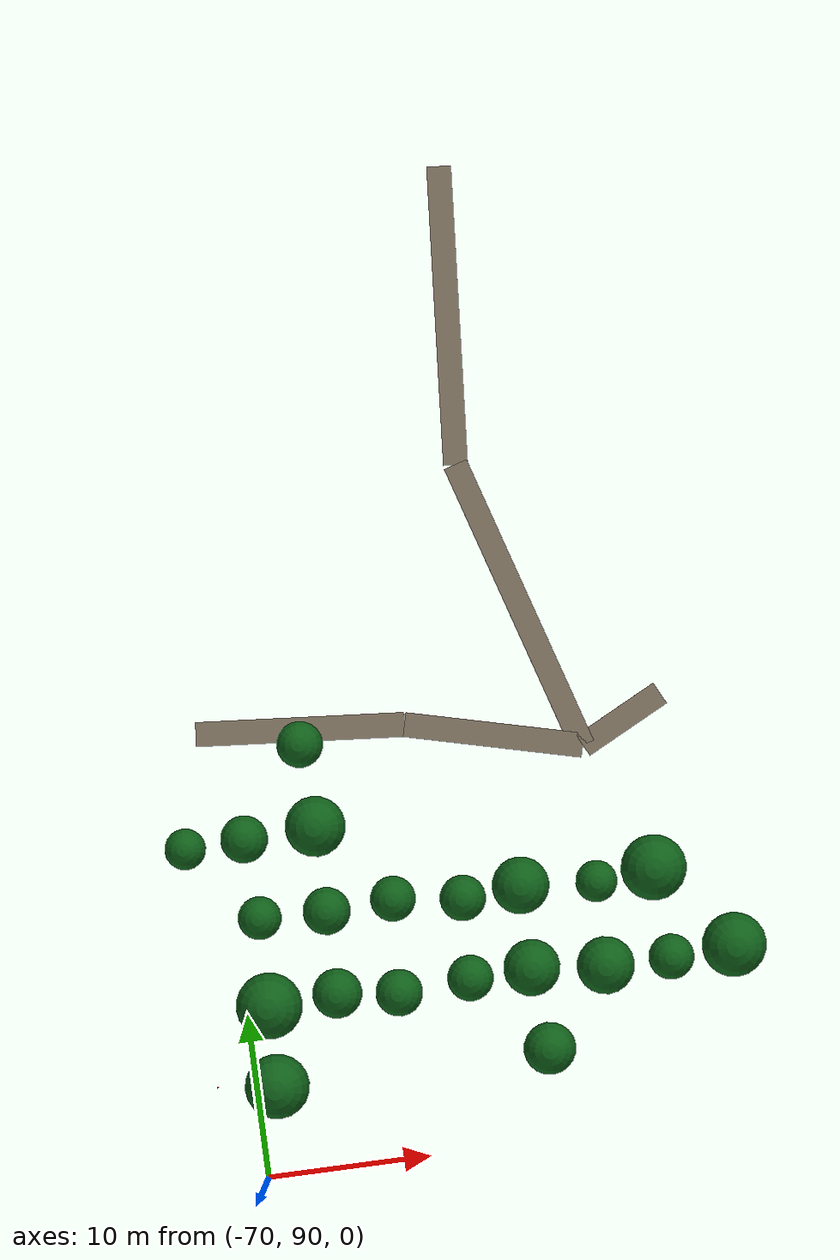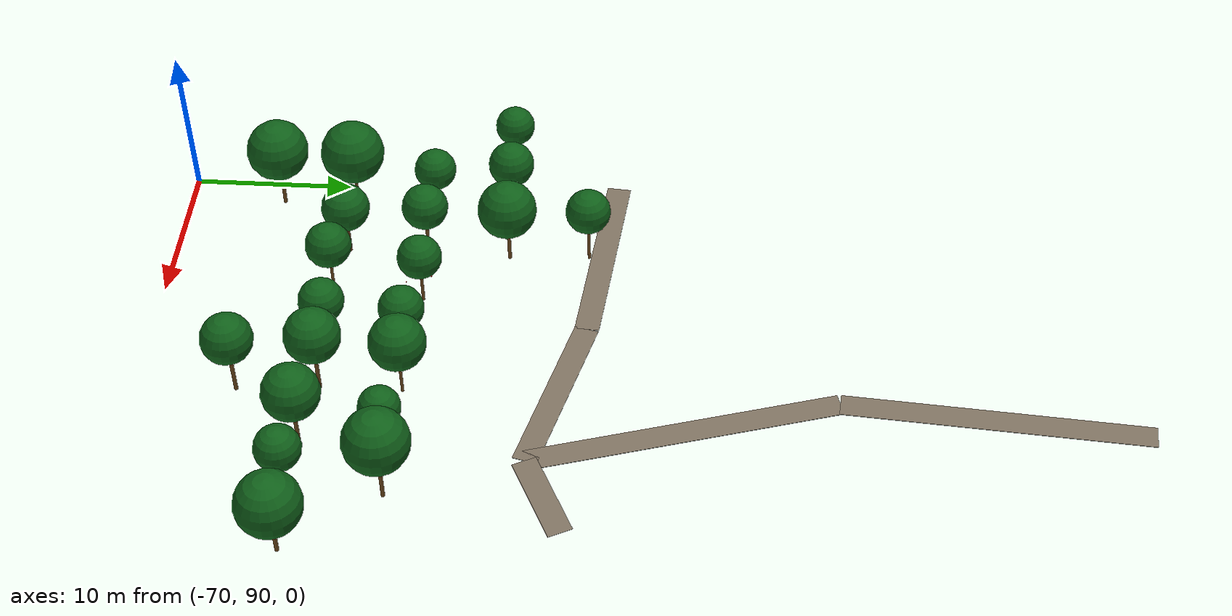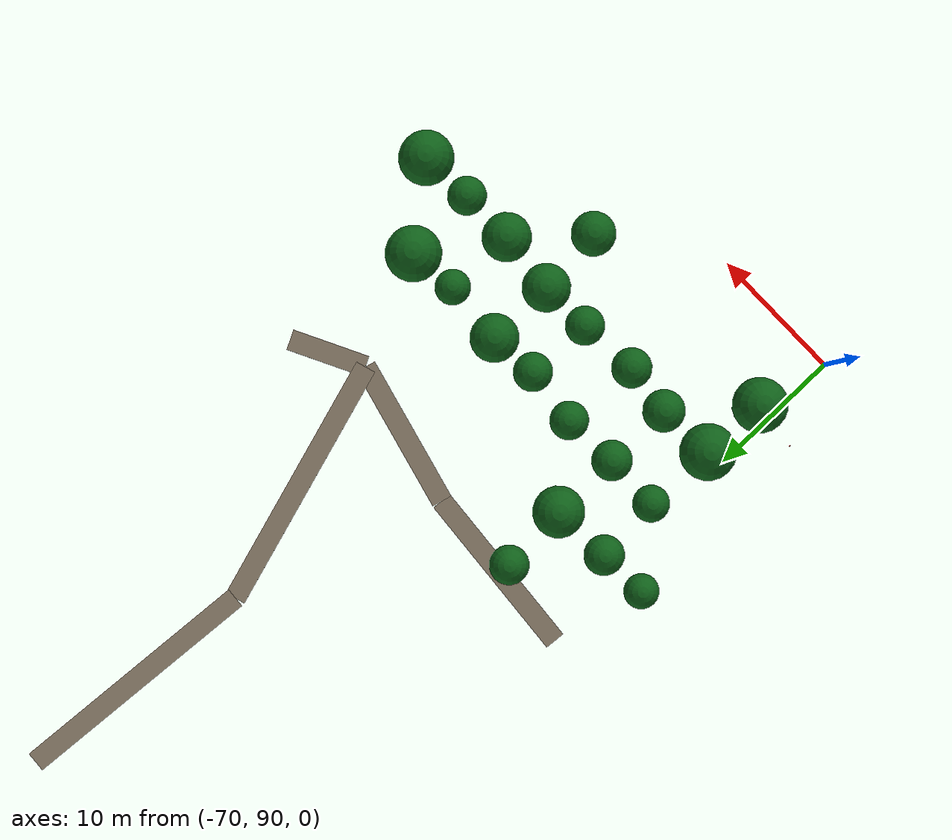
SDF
<sdf version="1.9">
 <world name="cheongsong_orchard">
  <model name="road_28">
   <static>true</static>
   <pose>-52.2 140.9 0.02 0 0 -1.6477</pose>
   <link name="link">
    <collision name="collision">
     <geometry><box><size>18.4 1.5 0.04</size></box></geometry>
     <surface><friction><ode><mu>0.9</mu><mu2>0.9</mu2></ode></friction></surface>
    </collision>
    <visual name="visual">
     <geometry><box><size>18.4 1.5 0.04</size></box></geometry>
     <material><ambient>0.4 0.35 0.28 1</ambient><diffuse>0.5 0.45 0.38 1</diffuse></material>
    </visual>
   </link>
  </model>
  <model name="road_29">
   <static>true</static>
   <pose>-50.2 122.7 0.02 0 0 -1.2793</pose>
   <link name="link">
    <collision name="collision">
     <geometry><box><size>18.9 1.5 0.04</size></box></geometry>
     <surface><friction><ode><mu>0.9</mu><mu2>0.9</mu2></ode></friction></surface>
    </collision>
    <visual name="visual">
     <geometry><box><size>18.9 1.5 0.04</size></box></geometry>
     <material><ambient>0.4 0.35 0.28 1</ambient><diffuse>0.5 0.45 0.38 1</diffuse></material>
    </visual>
   </link>
  </model>
  <model name="road_60">
   <static>true</static>
   <pose>-44.9 114.9 0.02 0 0 -2.6750</pose>
   <link name="link">
    <collision name="collision">
     <geometry><box><size>5.7 1.5 0.04</size></box></geometry>
     <surface><friction><ode><mu>0.9</mu><mu2>0.9</mu2></ode></friction></surface>
    </collision>
    <visual name="visual">
     <geometry><box><size>5.7 1.5 0.04</size></box></geometry>
     <material><ambient>0.4 0.35 0.28 1</ambient><diffuse>0.5 0.45 0.38 1</diffuse></material>
    </visual>
   </link>
  </model>
  <model name="road_61">
   <static>true</static>
   <pose>-52.8 115.0 0.02 0 0 2.8934</pose>
   <link name="link">
    <collision name="collision">
     <geometry><box><size>11.0 1.5 0.04</size></box></geometry>
     <surface><friction><ode><mu>0.9</mu><mu2>0.9</mu2></ode></friction></surface>
    </collision>
    <visual name="visual">
     <geometry><box><size>11.0 1.5 0.04</size></box></geometry>
     <material><ambient>0.4 0.35 0.28 1</ambient><diffuse>0.5 0.45 0.38 1</diffuse></material>
    </visual>
   </link>
  </model>
  <model name="road_62">
   <static>true</static>
   <pose>-64.5 116.9 0.02 0 0 3.0570</pose>
   <link name="link">
    <collision name="collision">
     <geometry><box><size>12.8 1.5 0.04</size></box></geometry>
     <surface><friction><ode><mu>0.9</mu><mu2>0.9</mu2></ode></friction></surface>
    </collision>
    <visual name="visual">
     <geometry><box><size>12.8 1.5 0.04</size></box></geometry>
     <material><ambient>0.4 0.35 0.28 1</ambient><diffuse>0.5 0.45 0.38 1</diffuse></material>
    </visual>
   </link>
  </model>
  <model name="apple_tree_2191">
   <static>true</static>
   <pose>-68.39 96.00 0 0 0 0</pose>
   <link name="link">
    <collision name="trunk_col">
     <pose>0 0 1.24 0 0 0</pose>
     <geometry><cylinder><radius>0.114</radius><length>2.47</length></cylinder></geometry>
    </collision>
    <visual name="trunk_vis">
     <pose>0 0 1.24 0 0 0</pose>
     <geometry><cylinder><radius>0.114</radius><length>2.47</length></cylinder></geometry>
     <material><ambient>0.35 0.22 0.08 1</ambient><diffuse>0.45 0.30 0.12 1</diffuse></material>
    </visual>
    <collision name="canopy_col">
     <pose>0 0 4.41 0 0 0</pose>
     <geometry><sphere><radius>1.94</radius></sphere></geometry>
    </collision>
    <visual name="canopy_vis">
     <pose>0 0 4.41 0 0 0</pose>
     <geometry><sphere><radius>1.94</radius></sphere></geometry>
     <material><ambient>0.04 0.28 0.06 1</ambient><diffuse>0.06 0.38 0.10 1</diffuse></material>
    </visual>
   </link>
  </model>
  <model name="apple_tree_2195">
   <static>true</static>
   <pose>-51.99 96.07 0 0 0 0</pose>
   <link name="link">
    <collision name="trunk_col">
     <pose>0 0 1.36 0 0 0</pose>
     <geometry><cylinder><radius>0.119</radius><length>2.71</length></cylinder></geometry>
    </collision>
    <visual name="trunk_vis">
     <pose>0 0 1.36 0 0 0</pose>
     <geometry><cylinder><radius>0.119</radius><length>2.71</length></cylinder></geometry>
     <material><ambient>0.35 0.22 0.08 1</ambient><diffuse>0.45 0.30 0.12 1</diffuse></material>
    </visual>
    <collision name="canopy_col">
     <pose>0 0 4.28 0 0 0</pose>
     <geometry><sphere><radius>1.57</radius></sphere></geometry>
    </collision>
    <visual name="canopy_vis">
     <pose>0 0 4.28 0 0 0</pose>
     <geometry><sphere><radius>1.57</radius></sphere></geometry>
     <material><ambient>0.04 0.28 0.06 1</ambient><diffuse>0.06 0.38 0.10 1</diffuse></material>
    </visual>
   </link>
  </model>
  <model name="apple_tree_2232">
   <static>true</static>
   <pose>-68.21 100.83 0 0 0 0</pose>
   <link name="link">
    <collision name="trunk_col">
     <pose>0 0 1.34 0 0 0</pose>
     <geometry><cylinder><radius>0.087</radius><length>2.67</length></cylinder></geometry>
    </collision>
    <visual name="trunk_vis">
     <pose>0 0 1.34 0 0 0</pose>
     <geometry><cylinder><radius>0.087</radius><length>2.67</length></cylinder></geometry>
     <material><ambient>0.35 0.22 0.08 1</ambient><diffuse>0.45 0.30 0.12 1</diffuse></material>
    </visual>
    <collision name="canopy_col">
     <pose>0 0 4.66 0 0 0</pose>
     <geometry><sphere><radius>1.99</radius></sphere></geometry>
    </collision>
    <visual name="canopy_vis">
     <pose>0 0 4.66 0 0 0</pose>
     <geometry><sphere><radius>1.99</radius></sphere></geometry>
     <material><ambient>0.04 0.28 0.06 1</ambient><diffuse>0.06 0.38 0.10 1</diffuse></material>
    </visual>
   </link>
  </model>
  <model name="apple_tree_2233">
   <static>true</static>
   <pose>-64.16 100.94 0 0 0 0</pose>
   <link name="link">
    <collision name="trunk_col">
     <pose>0 0 1.08 0 0 0</pose>
     <geometry><cylinder><radius>0.095</radius><length>2.17</length></cylinder></geometry>
    </collision>
    <visual name="trunk_vis">
     <pose>0 0 1.08 0 0 0</pose>
     <geometry><cylinder><radius>0.095</radius><length>2.17</length></cylinder></geometry>
     <material><ambient>0.35 0.22 0.08 1</ambient><diffuse>0.45 0.30 0.12 1</diffuse></material>
    </visual>
    <collision name="canopy_col">
     <pose>0 0 3.66 0 0 0</pose>
     <geometry><sphere><radius>1.50</radius></sphere></geometry>
    </collision>
    <visual name="canopy_vis">
     <pose>0 0 3.66 0 0 0</pose>
     <geometry><sphere><radius>1.50</radius></sphere></geometry>
     <material><ambient>0.04 0.28 0.06 1</ambient><diffuse>0.06 0.38 0.10 1</diffuse></material>
    </visual>
   </link>
  </model>
  <model name="apple_tree_2234">
   <static>true</static>
   <pose>-60.47 100.52 0 0 0 0</pose>
   <link name="link">
    <collision name="trunk_col">
     <pose>0 0 1.26 0 0 0</pose>
     <geometry><cylinder><radius>0.088</radius><length>2.52</length></cylinder></geometry>
    </collision>
    <visual name="trunk_vis">
     <pose>0 0 1.26 0 0 0</pose>
     <geometry><cylinder><radius>0.088</radius><length>2.52</length></cylinder></geometry>
     <material><ambient>0.35 0.22 0.08 1</ambient><diffuse>0.45 0.30 0.12 1</diffuse></material>
    </visual>
    <collision name="canopy_col">
     <pose>0 0 3.95 0 0 0</pose>
     <geometry><sphere><radius>1.42</radius></sphere></geometry>
    </collision>
    <visual name="canopy_vis">
     <pose>0 0 3.95 0 0 0</pose>
     <geometry><sphere><radius>1.42</radius></sphere></geometry>
     <material><ambient>0.04 0.28 0.06 1</ambient><diffuse>0.06 0.38 0.10 1</diffuse></material>
    </visual>
   </link>
  </model>
  <model name="apple_tree_2235">
   <static>true</static>
   <pose>-56.14 100.78 0 0 0 0</pose>
   <link name="link">
    <collision name="trunk_col">
     <pose>0 0 1.08 0 0 0</pose>
     <geometry><cylinder><radius>0.104</radius><length>2.15</length></cylinder></geometry>
    </collision>
    <visual name="trunk_vis">
     <pose>0 0 1.08 0 0 0</pose>
     <geometry><cylinder><radius>0.104</radius><length>2.15</length></cylinder></geometry>
     <material><ambient>0.35 0.22 0.08 1</ambient><diffuse>0.45 0.30 0.12 1</diffuse></material>
    </visual>
    <collision name="canopy_col">
     <pose>0 0 3.54 0 0 0</pose>
     <geometry><sphere><radius>1.39</radius></sphere></geometry>
    </collision>
    <visual name="canopy_vis">
     <pose>0 0 3.54 0 0 0</pose>
     <geometry><sphere><radius>1.39</radius></sphere></geometry>
     <material><ambient>0.04 0.28 0.06 1</ambient><diffuse>0.06 0.38 0.10 1</diffuse></material>
    </visual>
   </link>
  </model>
  <model name="apple_tree_2236">
   <static>true</static>
   <pose>-52.42 100.99 0 0 0 0</pose>
   <link name="link">
    <collision name="trunk_col">
     <pose>0 0 1.36 0 0 0</pose>
     <geometry><cylinder><radius>0.118</radius><length>2.72</length></cylinder></geometry>
    </collision>
    <visual name="trunk_vis">
     <pose>0 0 1.36 0 0 0</pose>
     <geometry><cylinder><radius>0.118</radius><length>2.72</length></cylinder></geometry>
     <material><ambient>0.35 0.22 0.08 1</ambient><diffuse>0.45 0.30 0.12 1</diffuse></material>
    </visual>
    <collision name="canopy_col">
     <pose>0 0 4.42 0 0 0</pose>
     <geometry><sphere><radius>1.70</radius></sphere></geometry>
    </collision>
    <visual name="canopy_vis">
     <pose>0 0 4.42 0 0 0</pose>
     <geometry><sphere><radius>1.70</radius></sphere></geometry>
     <material><ambient>0.04 0.28 0.06 1</ambient><diffuse>0.06 0.38 0.10 1</diffuse></material>
    </visual>
   </link>
  </model>
  <model name="apple_tree_2237">
   <static>true</static>
   <pose>-48.03 100.54 0 0 0 0</pose>
   <link name="link">
    <collision name="trunk_col">
     <pose>0 0 1.31 0 0 0</pose>
     <geometry><cylinder><radius>0.118</radius><length>2.62</length></cylinder></geometry>
    </collision>
    <visual name="trunk_vis">
     <pose>0 0 1.31 0 0 0</pose>
     <geometry><cylinder><radius>0.118</radius><length>2.62</length></cylinder></geometry>
     <material><ambient>0.35 0.22 0.08 1</ambient><diffuse>0.45 0.30 0.12 1</diffuse></material>
    </visual>
    <collision name="canopy_col">
     <pose>0 0 4.35 0 0 0</pose>
     <geometry><sphere><radius>1.73</radius></sphere></geometry>
    </collision>
    <visual name="canopy_vis">
     <pose>0 0 4.35 0 0 0</pose>
     <geometry><sphere><radius>1.73</radius></sphere></geometry>
     <material><ambient>0.04 0.28 0.06 1</ambient><diffuse>0.06 0.38 0.10 1</diffuse></material>
    </visual>
   </link>
  </model>
  <model name="apple_tree_2238">
   <static>true</static>
   <pose>-44.07 100.51 0 0 0 0</pose>
   <link name="link">
    <collision name="trunk_col">
     <pose>0 0 1.39 0 0 0</pose>
     <geometry><cylinder><radius>0.137</radius><length>2.77</length></cylinder></geometry>
    </collision>
    <visual name="trunk_vis">
     <pose>0 0 1.39 0 0 0</pose>
     <geometry><cylinder><radius>0.137</radius><length>2.77</length></cylinder></geometry>
     <material><ambient>0.35 0.22 0.08 1</ambient><diffuse>0.45 0.30 0.12 1</diffuse></material>
    </visual>
    <collision name="canopy_col">
     <pose>0 0 4.14 0 0 0</pose>
     <geometry><sphere><radius>1.37</radius></sphere></geometry>
    </collision>
    <visual name="canopy_vis">
     <pose>0 0 4.14 0 0 0</pose>
     <geometry><sphere><radius>1.37</radius></sphere></geometry>
     <material><ambient>0.04 0.28 0.06 1</ambient><diffuse>0.06 0.38 0.10 1</diffuse></material>
    </visual>
   </link>
  </model>
  <model name="apple_tree_2239">
   <static>true</static>
   <pose>-40.24 100.71 0 0 0 0</pose>
   <link name="link">
    <collision name="trunk_col">
     <pose>0 0 1.02 0 0 0</pose>
     <geometry><cylinder><radius>0.121</radius><length>2.04</length></cylinder></geometry>
    </collision>
    <visual name="trunk_vis">
     <pose>0 0 1.02 0 0 0</pose>
     <geometry><cylinder><radius>0.121</radius><length>2.04</length></cylinder></geometry>
     <material><ambient>0.35 0.22 0.08 1</ambient><diffuse>0.45 0.30 0.12 1</diffuse></material>
    </visual>
    <collision name="canopy_col">
     <pose>0 0 3.98 0 0 0</pose>
     <geometry><sphere><radius>1.94</radius></sphere></geometry>
    </collision>
    <visual name="canopy_vis">
     <pose>0 0 3.98 0 0 0</pose>
     <geometry><sphere><radius>1.94</radius></sphere></geometry>
     <material><ambient>0.04 0.28 0.06 1</ambient><diffuse>0.06 0.38 0.10 1</diffuse></material>
    </visual>
   </link>
  </model>
  <model name="apple_tree_2278">
   <static>true</static>
   <pose>-68.18 106.01 0 0 0 0</pose>
   <link name="link">
    <collision name="trunk_col">
     <pose>0 0 1.11 0 0 0</pose>
     <geometry><cylinder><radius>0.131</radius><length>2.22</length></cylinder></geometry>
    </collision>
    <visual name="trunk_vis">
     <pose>0 0 1.11 0 0 0</pose>
     <geometry><cylinder><radius>0.131</radius><length>2.22</length></cylinder></geometry>
     <material><ambient>0.35 0.22 0.08 1</ambient><diffuse>0.45 0.30 0.12 1</diffuse></material>
    </visual>
    <collision name="canopy_col">
     <pose>0 0 3.53 0 0 0</pose>
     <geometry><sphere><radius>1.31</radius></sphere></geometry>
    </collision>
    <visual name="canopy_vis">
     <pose>0 0 3.53 0 0 0</pose>
     <geometry><sphere><radius>1.31</radius></sphere></geometry>
     <material><ambient>0.04 0.28 0.06 1</ambient><diffuse>0.06 0.38 0.10 1</diffuse></material>
    </visual>
   </link>
  </model>
  <model name="apple_tree_2279">
   <static>true</static>
   <pose>-64.12 105.93 0 0 0 0</pose>
   <link name="link">
    <collision name="trunk_col">
     <pose>0 0 1.30 0 0 0</pose>
     <geometry><cylinder><radius>0.104</radius><length>2.61</length></cylinder></geometry>
    </collision>
    <visual name="trunk_vis">
     <pose>0 0 1.30 0 0 0</pose>
     <geometry><cylinder><radius>0.104</radius><length>2.61</length></cylinder></geometry>
     <material><ambient>0.35 0.22 0.08 1</ambient><diffuse>0.45 0.30 0.12 1</diffuse></material>
    </visual>
    <collision name="canopy_col">
     <pose>0 0 4.04 0 0 0</pose>
     <geometry><sphere><radius>1.43</radius></sphere></geometry>
    </collision>
    <visual name="canopy_vis">
     <pose>0 0 4.04 0 0 0</pose>
     <geometry><sphere><radius>1.43</radius></sphere></geometry>
     <material><ambient>0.04 0.28 0.06 1</ambient><diffuse>0.06 0.38 0.10 1</diffuse></material>
    </visual>
   </link>
  </model>
  <model name="apple_tree_2280">
   <static>true</static>
   <pose>-60.11 106.11 0 0 0 0</pose>
   <link name="link">
    <collision name="trunk_col">
     <pose>0 0 1.12 0 0 0</pose>
     <geometry><cylinder><radius>0.094</radius><length>2.23</length></cylinder></geometry>
    </collision>
    <visual name="trunk_vis">
     <pose>0 0 1.12 0 0 0</pose>
     <geometry><cylinder><radius>0.094</radius><length>2.23</length></cylinder></geometry>
     <material><ambient>0.35 0.22 0.08 1</ambient><diffuse>0.45 0.30 0.12 1</diffuse></material>
    </visual>
    <collision name="canopy_col">
     <pose>0 0 3.61 0 0 0</pose>
     <geometry><sphere><radius>1.37</radius></sphere></geometry>
    </collision>
    <visual name="canopy_vis">
     <pose>0 0 3.61 0 0 0</pose>
     <geometry><sphere><radius>1.37</radius></sphere></geometry>
     <material><ambient>0.04 0.28 0.06 1</ambient><diffuse>0.06 0.38 0.10 1</diffuse></material>
    </visual>
   </link>
  </model>
  <model name="apple_tree_2281">
   <static>true</static>
   <pose>-55.96 105.58 0 0 0 0</pose>
   <link name="link">
    <collision name="trunk_col">
     <pose>0 0 1.00 0 0 0</pose>
     <geometry><cylinder><radius>0.148</radius><length>2.00</length></cylinder></geometry>
    </collision>
    <visual name="trunk_vis">
     <pose>0 0 1.00 0 0 0</pose>
     <geometry><cylinder><radius>0.148</radius><length>2.00</length></cylinder></geometry>
     <material><ambient>0.35 0.22 0.08 1</ambient><diffuse>0.45 0.30 0.12 1</diffuse></material>
    </visual>
    <collision name="canopy_col">
     <pose>0 0 3.39 0 0 0</pose>
     <geometry><sphere><radius>1.39</radius></sphere></geometry>
    </collision>
    <visual name="canopy_vis">
     <pose>0 0 3.39 0 0 0</pose>
     <geometry><sphere><radius>1.39</radius></sphere></geometry>
     <material><ambient>0.04 0.28 0.06 1</ambient><diffuse>0.06 0.38 0.10 1</diffuse></material>
    </visual>
   </link>
  </model>
  <model name="apple_tree_2282">
   <static>true</static>
   <pose>-52.43 105.92 0 0 0 0</pose>
   <link name="link">
    <collision name="trunk_col">
     <pose>0 0 1.22 0 0 0</pose>
     <geometry><cylinder><radius>0.089</radius><length>2.43</length></cylinder></geometry>
    </collision>
    <visual name="trunk_vis">
     <pose>0 0 1.22 0 0 0</pose>
     <geometry><cylinder><radius>0.089</radius><length>2.43</length></cylinder></geometry>
     <material><ambient>0.35 0.22 0.08 1</ambient><diffuse>0.45 0.30 0.12 1</diffuse></material>
    </visual>
    <collision name="canopy_col">
     <pose>0 0 4.15 0 0 0</pose>
     <geometry><sphere><radius>1.72</radius></sphere></geometry>
    </collision>
    <visual name="canopy_vis">
     <pose>0 0 4.15 0 0 0</pose>
     <geometry><sphere><radius>1.72</radius></sphere></geometry>
     <material><ambient>0.04 0.28 0.06 1</ambient><diffuse>0.06 0.38 0.10 1</diffuse></material>
    </visual>
   </link>
  </model>
  <model name="apple_tree_2283">
   <static>true</static>
   <pose>-47.89 105.53 0 0 0 0</pose>
   <link name="link">
    <collision name="trunk_col">
     <pose>0 0 1.17 0 0 0</pose>
     <geometry><cylinder><radius>0.082</radius><length>2.35</length></cylinder></geometry>
    </collision>
    <visual name="trunk_vis">
     <pose>0 0 1.17 0 0 0</pose>
     <geometry><cylinder><radius>0.082</radius><length>2.35</length></cylinder></geometry>
     <material><ambient>0.35 0.22 0.08 1</ambient><diffuse>0.45 0.30 0.12 1</diffuse></material>
    </visual>
    <collision name="canopy_col">
     <pose>0 0 3.61 0 0 0</pose>
     <geometry><sphere><radius>1.26</radius></sphere></geometry>
    </collision>
    <visual name="canopy_vis">
     <pose>0 0 3.61 0 0 0</pose>
     <geometry><sphere><radius>1.26</radius></sphere></geometry>
     <material><ambient>0.04 0.28 0.06 1</ambient><diffuse>0.06 0.38 0.10 1</diffuse></material>
    </visual>
   </link>
  </model>
  <model name="apple_tree_2284">
   <static>true</static>
   <pose>-44.44 105.96 0 0 0 0</pose>
   <link name="link">
    <collision name="trunk_col">
     <pose>0 0 1.35 0 0 0</pose>
     <geometry><cylinder><radius>0.115</radius><length>2.69</length></cylinder></geometry>
    </collision>
    <visual name="trunk_vis">
     <pose>0 0 1.35 0 0 0</pose>
     <geometry><cylinder><radius>0.115</radius><length>2.69</length></cylinder></geometry>
     <material><ambient>0.35 0.22 0.08 1</ambient><diffuse>0.45 0.30 0.12 1</diffuse></material>
    </visual>
    <collision name="canopy_col">
     <pose>0 0 4.66 0 0 0</pose>
     <geometry><sphere><radius>1.97</radius></sphere></geometry>
    </collision>
    <visual name="canopy_vis">
     <pose>0 0 4.66 0 0 0</pose>
     <geometry><sphere><radius>1.97</radius></sphere></geometry>
     <material><ambient>0.04 0.28 0.06 1</ambient><diffuse>0.06 0.38 0.10 1</diffuse></material>
    </visual>
   </link>
  </model>
  <model name="apple_tree_2326">
   <static>true</static>
   <pose>-72.00 110.71 0 0 0 0</pose>
   <link name="link">
    <collision name="trunk_col">
     <pose>0 0 1.45 0 0 0</pose>
     <geometry><cylinder><radius>0.140</radius><length>2.90</length></cylinder></geometry>
    </collision>
    <visual name="trunk_vis">
     <pose>0 0 1.45 0 0 0</pose>
     <geometry><cylinder><radius>0.140</radius><length>2.90</length></cylinder></geometry>
     <material><ambient>0.35 0.22 0.08 1</ambient><diffuse>0.45 0.30 0.12 1</diffuse></material>
    </visual>
    <collision name="canopy_col">
     <pose>0 0 4.13 0 0 0</pose>
     <geometry><sphere><radius>1.24</radius></sphere></geometry>
    </collision>
    <visual name="canopy_vis">
     <pose>0 0 4.13 0 0 0</pose>
     <geometry><sphere><radius>1.24</radius></sphere></geometry>
     <material><ambient>0.04 0.28 0.06 1</ambient><diffuse>0.06 0.38 0.10 1</diffuse></material>
    </visual>
   </link>
  </model>
  <model name="apple_tree_2327">
   <static>true</static>
   <pose>-68.45 110.83 0 0 0 0</pose>
   <link name="link">
    <collision name="trunk_col">
     <pose>0 0 1.27 0 0 0</pose>
     <geometry><cylinder><radius>0.100</radius><length>2.55</length></cylinder></geometry>
    </collision>
    <visual name="trunk_vis">
     <pose>0 0 1.27 0 0 0</pose>
     <geometry><cylinder><radius>0.100</radius><length>2.55</length></cylinder></geometry>
     <material><ambient>0.35 0.22 0.08 1</ambient><diffuse>0.45 0.30 0.12 1</diffuse></material>
    </visual>
    <collision name="canopy_col">
     <pose>0 0 3.98 0 0 0</pose>
     <geometry><sphere><radius>1.43</radius></sphere></geometry>
    </collision>
    <visual name="canopy_vis">
     <pose>0 0 3.98 0 0 0</pose>
     <geometry><sphere><radius>1.43</radius></sphere></geometry>
     <material><ambient>0.04 0.28 0.06 1</ambient><diffuse>0.06 0.38 0.10 1</diffuse></material>
    </visual>
   </link>
  </model>
  <model name="apple_tree_2328">
   <static>true</static>
   <pose>-64.13 111.03 0 0 0 0</pose>
   <link name="link">
    <collision name="trunk_col">
     <pose>0 0 1.13 0 0 0</pose>
     <geometry><cylinder><radius>0.112</radius><length>2.26</length></cylinder></geometry>
    </collision>
    <visual name="trunk_vis">
     <pose>0 0 1.13 0 0 0</pose>
     <geometry><cylinder><radius>0.112</radius><length>2.26</length></cylinder></geometry>
     <material><ambient>0.35 0.22 0.08 1</ambient><diffuse>0.45 0.30 0.12 1</diffuse></material>
    </visual>
    <collision name="canopy_col">
     <pose>0 0 4.08 0 0 0</pose>
     <geometry><sphere><radius>1.82</radius></sphere></geometry>
    </collision>
    <visual name="canopy_vis">
     <pose>0 0 4.08 0 0 0</pose>
     <geometry><sphere><radius>1.82</radius></sphere></geometry>
     <material><ambient>0.04 0.28 0.06 1</ambient><diffuse>0.06 0.38 0.10 1</diffuse></material>
    </visual>
   </link>
  </model>
  <model name="apple_tree_2365">
   <static>true</static>
   <pose>-64.41 116.01 0 0 0 0</pose>
   <link name="link">
    <collision name="trunk_col">
     <pose>0 0 1.27 0 0 0</pose>
     <geometry><cylinder><radius>0.093</radius><length>2.55</length></cylinder></geometry>
    </collision>
    <visual name="trunk_vis">
     <pose>0 0 1.27 0 0 0</pose>
     <geometry><cylinder><radius>0.093</radius><length>2.55</length></cylinder></geometry>
     <material><ambient>0.35 0.22 0.08 1</ambient><diffuse>0.45 0.30 0.12 1</diffuse></material>
    </visual>
    <collision name="canopy_col">
     <pose>0 0 3.94 0 0 0</pose>
     <geometry><sphere><radius>1.40</radius></sphere></geometry>
    </collision>
    <visual name="canopy_vis">
     <pose>0 0 3.94 0 0 0</pose>
     <geometry><sphere><radius>1.40</radius></sphere></geometry>
     <material><ambient>0.04 0.28 0.06 1</ambient><diffuse>0.06 0.38 0.10 1</diffuse></material>
    </visual>
   </link>
  </model>
  <model name="apple_2190_1">
   <static>true</static>
   <pose>-72.06 96.21 2.92 0 0 0</pose>
   <link name="link">
    <visual name="visual">
     <geometry><sphere><radius>0.04</radius></sphere></geometry>
     <material><ambient>0.7 0.05 0.02 1</ambient><diffuse>0.9 0.10 0.05 1</diffuse></material>
    </visual>
   </link>
  </model>
  <model name="apple_2190_4">
   <static>true</static>
   <pose>-72.12 96.15 2.32 0 0 0</pose>
   <link name="link">
    <visual name="visual">
     <geometry><sphere><radius>0.04</radius></sphere></geometry>
     <material><ambient>0.7 0.05 0.02 1</ambient><diffuse>0.9 0.10 0.05 1</diffuse></material>
    </visual>
   </link>
  </model>
  <model name="apple_2280_0">
   <static>true</static>
   <pose>-59.86 106.78 2.25 0 0 0</pose>
   <link name="link">
    <visual name="visual">
     <geometry><sphere><radius>0.04</radius></sphere></geometry>
     <material><ambient>0.7 0.05 0.02 1</ambient><diffuse>0.9 0.10 0.05 1</diffuse></material>
    </visual>
   </link>
  </model>
  <model name="apple_2280_1">
   <static>true</static>
   <pose>-59.81 105.84 2.38 0 0 0</pose>
   <link name="link">
    <visual name="visual">
     <geometry><sphere><radius>0.04</radius></sphere></geometry>
     <material><ambient>0.7 0.05 0.02 1</ambient><diffuse>0.9 0.10 0.05 1</diffuse></material>
    </visual>
   </link>
  </model>
  <model name="apple_2280_2">
   <static>true</static>
   <pose>-59.78 105.22 1.77 0 0 0</pose>
   <link name="link">
    <visual name="visual">
     <geometry><sphere><radius>0.04</radius></sphere></geometry>
     <material><ambient>0.7 0.05 0.02 1</ambient><diffuse>0.9 0.10 0.05 1</diffuse></material>
    </visual>
   </link>
  </model>
  <model name="apple_2280_3">
   <static>true</static>
   <pose>-60.27 105.46 2.13 0 0 0</pose>
   <link name="link">
    <visual name="visual">
     <geometry><sphere><radius>0.04</radius></sphere></geometry>
     <material><ambient>0.7 0.05 0.02 1</ambient><diffuse>0.9 0.10 0.05 1</diffuse></material>
    </visual>
   </link>
  </model>
 </world>
</sdf>
